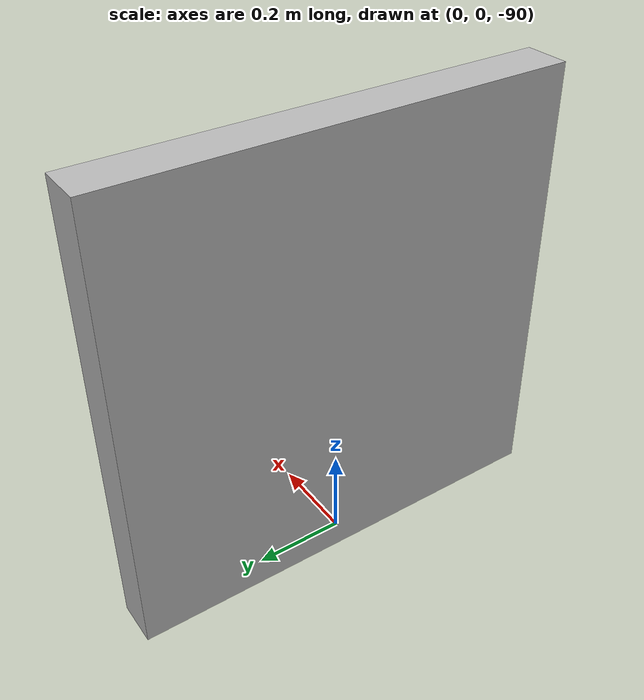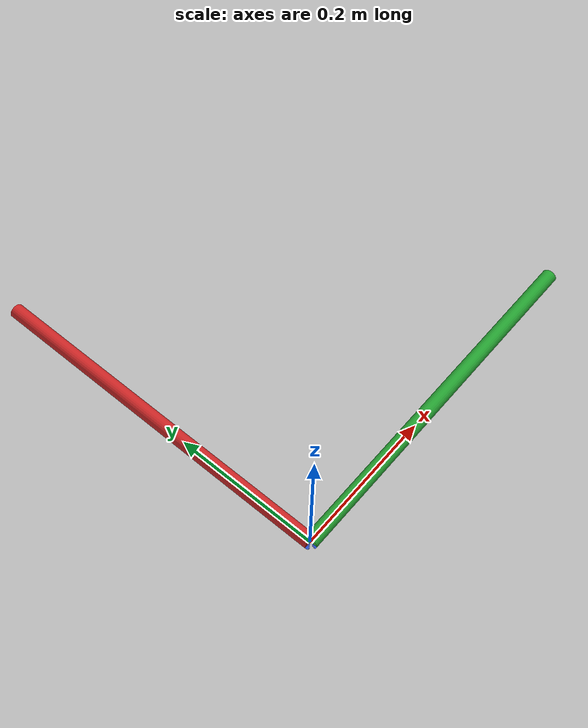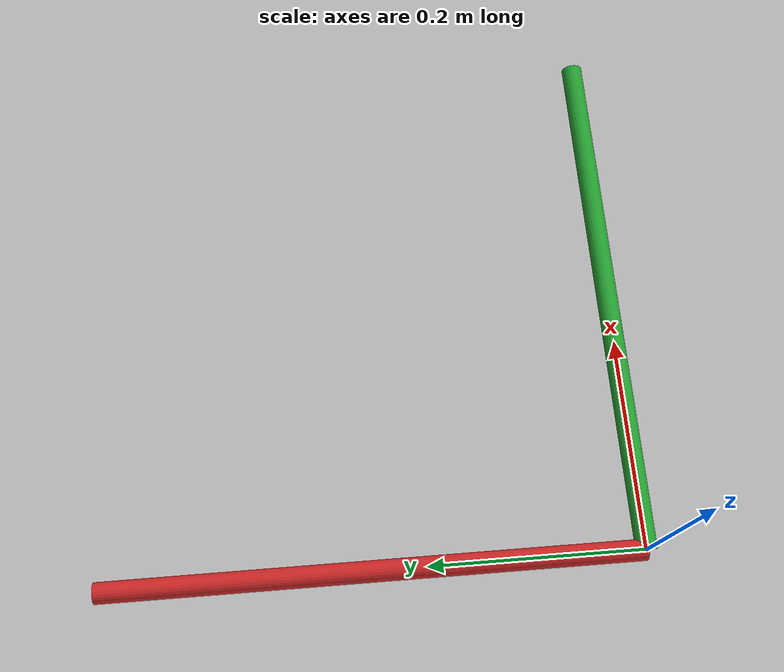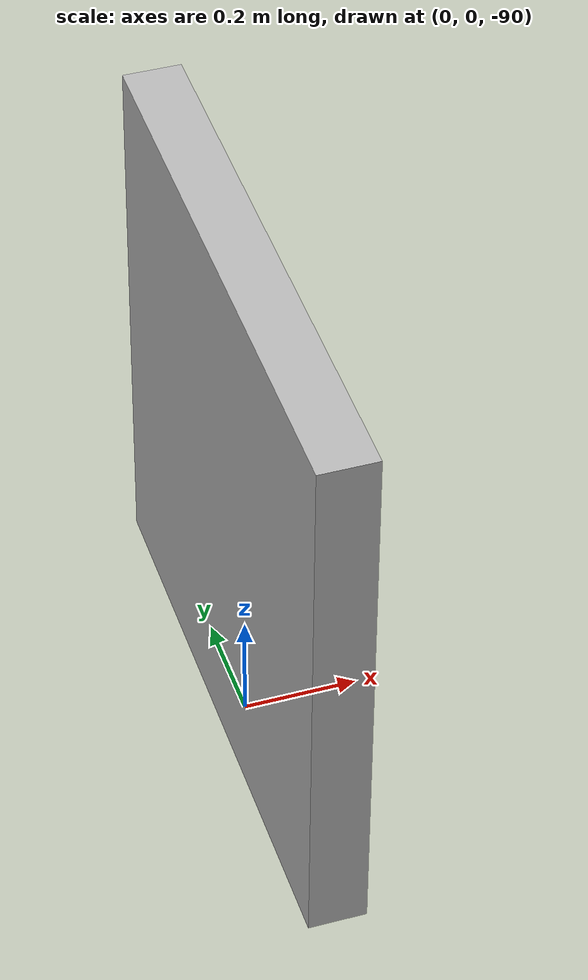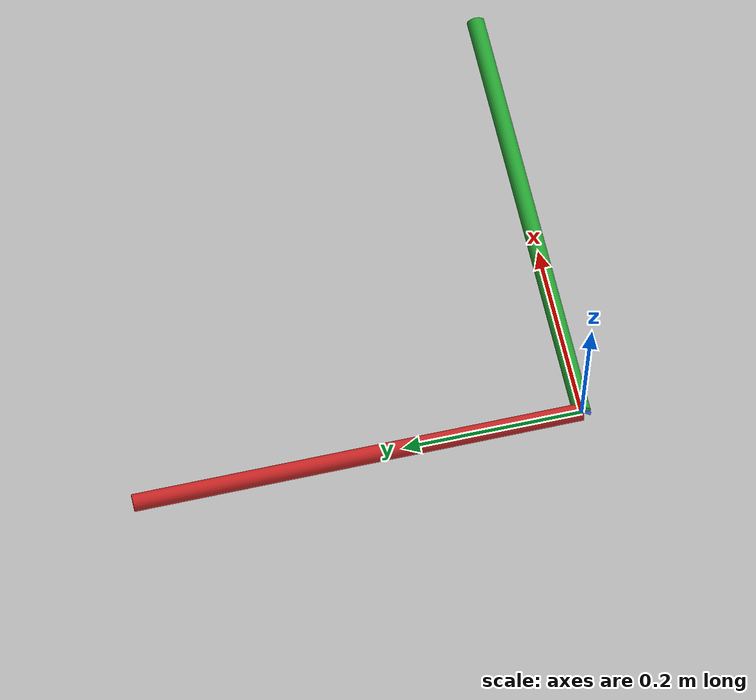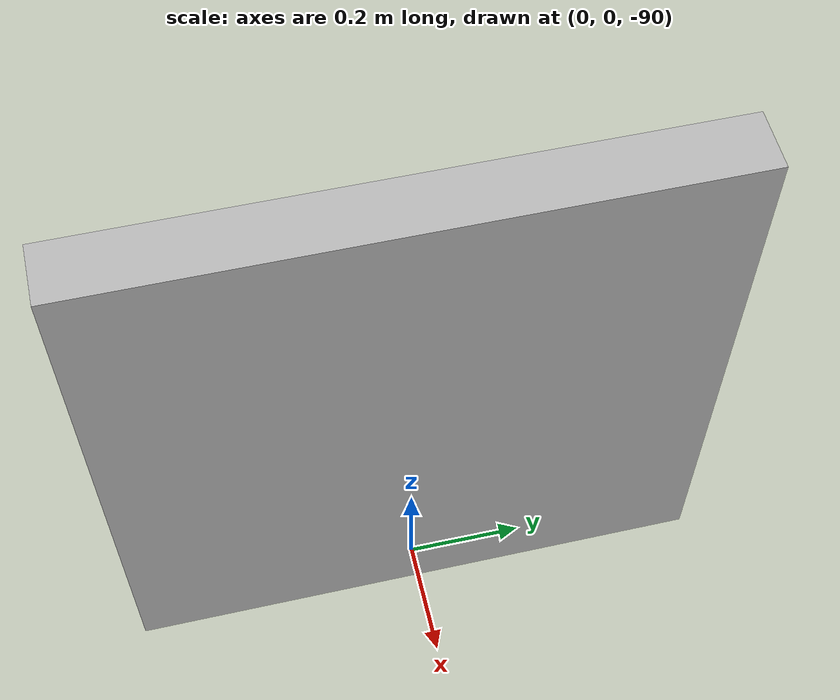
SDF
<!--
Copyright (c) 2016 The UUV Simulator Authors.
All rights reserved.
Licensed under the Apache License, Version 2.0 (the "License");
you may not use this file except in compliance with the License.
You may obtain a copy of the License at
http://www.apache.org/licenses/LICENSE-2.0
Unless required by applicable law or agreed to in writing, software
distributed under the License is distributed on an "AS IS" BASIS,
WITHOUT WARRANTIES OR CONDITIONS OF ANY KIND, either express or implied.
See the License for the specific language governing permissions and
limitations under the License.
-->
<?xml version="1.0" ?>
<!-- Modified for different Gazebo GUI camera angle -->

<sdf version="1.4">
  <world name="oceans_waves">
    <physics name="default_physics" default="true" type="ode">
      <max_step_size>0.002</max_step_size>
      <real_time_factor>1</real_time_factor>
      <real_time_update_rate>500</real_time_update_rate>
    </physics>
    <scene>
      <ambient>0.01 0.01 0.01 1.0</ambient>
      <sky>
        <clouds>
          <speed>12</speed>
        </clouds>
      </sky>
      <shadows>1</shadows>
    </scene>

    <!-- Origin placed somewhere in the middle of the North Sea  -->
    <spherical_coordinates>
      <latitude_deg>56.71897669633431</latitude_deg>
      <longitude_deg>3.515625</longitude_deg>
    </spherical_coordinates>

    <!-- Global light source -->
    <light type="directional" name="sun1">
      <pose>50 0 150 0 0 0</pose>
      <diffuse>1 1 1 1</diffuse>
      <specular>.1 .1 .1 1</specular>
      <direction>0.3 0.3 -1</direction>
      <cast_shadows>false</cast_shadows>
    </light>

    <!-- Global light source -->
    <light type="directional" name="sun_diffuse">
      <pose>-50 0 -150 0 0 0</pose>
      <diffuse>0.6 0.6 0.6 1</diffuse>
      <specular>0 0 0 1</specular>
      <direction>-0.3 -0.3 -1</direction>
      <cast_shadows>false</cast_shadows>
    </light>

    <!-- Virtual NED frame -->
    <include>
      <uri>model://ned_frame</uri>
      <pose>0 0 0 0 0 0</pose>
    </include>

    <!-- Bounding box with sea surface -->
    <include>
      <uri>model://ocean</uri>
      <pose>0 0 0 0 0 0</pose>
    </include>

    <plugin name="sc_interface" filename="libuuv_sc_ros_interface_plugin.so"/>

    <model name="springy plate">
      <pose>0.0 0.0 -90 0 0.0 0.0</pose>
      <link name="link_1">
        <pose>0.0 0.0 0.0 0.0 0.0 0.0</pose>
        <inertial>
          <pose>0.0 0.0 0 0.0 0.0 0.0</pose>
          <inertia>
            <ixx>0.01</ixx>
            <ixy>0.0</ixy>
            <ixz>0.0</ixz>
            <iyy>0.01</iyy>
            <iyz>0.0</iyz>
            <izz>0.01</izz>
          </inertia>
          <mass>1.0</mass>
        </inertial>
        <visual name="visual_plate">
          <pose>0.0 0.0 0.5 0.0 0.0 0.0</pose>
          <geometry>
            <box>
              <size>0.1 1 1 </size>
            </box>
          </geometry>
          <material>
            <script>Gazebo/Red</script>
          </material>
          <laser_retro>100.0</laser_retro>
        </visual>
        <collision name="collision_plate">
          <pose>0.0 0.0 0.5 0.0 0.0 0.0</pose>
          <max_contacts>250</max_contacts>
          <geometry>
            <box>
              <size>0.1 1 1 </size>
            </box>
          </geometry>
          <surface>
            <friction>
              <ode>
                <mu>0.5</mu>
                <mu2>0.2</mu2>
                <fdir1>1.0 0 0</fdir1>
                <slip1>0</slip1>
                <slip2>0</slip2>
              </ode>
            </friction>
            <bounce>
              <restitution_coefficient>0</restitution_coefficient>
              <threshold>1000000.0</threshold>
            </bounce>
            <contact>
              <ode>
                <soft_cfm>0</soft_cfm>
                <kp>1e15</kp>
                <kd>1e13</kd>
                <max_vel>100.0</max_vel>
                <min_depth>0.0001</min_depth>
              </ode>
            </contact>
          </surface>
          <laser_retro>100.0</laser_retro>
        </collision>
        <gravity>true</gravity>
        <self_collide>true</self_collide>
        <kinematic>false</kinematic>
      </link>
      <joint name="joint_0" type="prismatic">
        <parent>world</parent>
        <child>link_1</child>
        <pose>0.0 0.0 0.0 0.0 0.0 0.0</pose>
        <axis>
          <limit>
            <lower>0</lower>
            <upper>0</upper>
            <effort>1000</effort>
            <velocity>1000</velocity>
          </limit>
          <xyz>1.0 0.0 0</xyz>
        </axis>
        <physics>
          <ode>
            <cfm>0.0</cfm>
            <bounce>0.0</bounce>
            <max_force>1000000.0</max_force>
            <velocity>0.0</velocity>
            <fudge_factor>0.0</fudge_factor>
            <limit>
              <cfm>0.2</cfm>
              <erp>1.0</erp>
            </limit>
          </ode>
        </physics>
      </joint>
      <static>false</static>
    </model>

    <gui fullscreen='0'>
      <camera name='user_camera'>
        <pose frame=''>9.0 -3.0 -87.0 0.0 0.7 2.2</pose>
        <view_controller>orbit</view_controller>
        <projection_type>perspective</projection_type>
      </camera>
    </gui>
  </world>
</sdf>

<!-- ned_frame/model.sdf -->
<sdf version='1.5'>
    <model name="world_ned">

      <pose>0 0 0 0 0 0</pose>
      <static>true</static>

      <link name="world_ned">
        <gravity>0</gravity>
        <pose>0 0 0 3.14159265359 0 1.5707963267948966</pose>

        <visual name="N_visual">
          <pose>0.25 0 0 1.5707963267948966 0 1.5707963267948966</pose>
          <geometry>
            <cylinder>
              <radius>0.01</radius>
              <length>0.5</length>
            </cylinder>
          </geometry>
          <material>
            <script>
              <uri>file://media/materials/scripts/gazebo.material</uri>
              <name>Gazebo/Red</name>
            </script>
          </material>
        </visual>

        <visual name="E_visual">
          <pose>0 0.25 0 1.5707963267948966 0 0</pose>
          <geometry>
            <cylinder>
              <radius>0.01</radius>
              <length>0.5</length>
            </cylinder>
          </geometry>
          <material>
            <script>
              <uri>file://media/materials/scripts/gazebo.material</uri>
              <name>Gazebo/Green</name>
            </script>
          </material>
        </visual>

        <visual name="D_visual">
          <pose>0 0 0.25 0 0 0</pose>
          <geometry>
            <cylinder>
              <radius>0.01</radius>
              <length>0.5</length>
            </cylinder>
          </geometry>
          <material>
            <script>
              <uri>file://media/materials/scripts/gazebo.material</uri>
              <name>Gazebo/Blue</name>
            </script>
          </material>
        </visual>
      </link>
    </model>
</sdf>

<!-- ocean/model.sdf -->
<sdf version="1.6">
    <model name="ocean">
        <static>true</static>
        <link name="link">
            <visual name="visual">
                <geometry>
                    <mesh>
                        <uri>meshes/waterlow_small.dae</uri>
                    </mesh>
                </geometry>
                <plugin filename="gz-sim-shader-param-system" name="gz::sim::systems::ShaderParam">
                    <shader language="glsl">
                        <vertex>materials/programs/GerstnerWaves_vs_330.glsl</vertex>
                        <fragment>materials/programs/GerstnerWaves_fs_330.glsl</fragment>
                    </shader>
                    <shader language="metal">
                        <vertex>materials/programs/GerstnerWaves_vs.metal</vertex>
                        <fragment>materials/programs/GerstnerWaves_fs.metal</fragment>
                    </shader>
                    <param>
                        <shader>vertex</shader>
                        <name>Nwaves</name>
                        <type>int</type>
                        <value>0</value>
                    </param>
                    <param>
                        <shader>vertex</shader>
                        <name>rescale</name>
                        <type>float</type>
                        <value>0.125</value>
                    </param>
                    <param>
                        <shader>vertex</shader>
                        <name>bumpScale</name>
                        <type>float_array</type>
                        <value>75 75</value>
                    </param>
                    <param>
                        <shader>vertex</shader>
                        <name>bumpSpeed</name>
                        <type>float_array</type>
                        <value>0.01 0.0</value>
                    </param>
                    <param>
                        <shader>vertex</shader>
                        <name>amplitude</name>
                        <type>float_array</type>
                        <value>0.42 0.28, 0.21</value>
                    </param>
                    <param>
                        <shader>vertex</shader>
                        <name>wavenumber</name>
                        <type>float_array</type>
                        <value>0.028 0.0896 0.0504</value>
                    </param>
                    <param>
                        <shader>vertex</shader>
                        <name>omega</name>
                        <type>float_array</type>
                        <value>0.5 1.7 1.0</value>
                    </param>
                    <param>
                        <shader>vertex</shader>
                        <name>dir0</name>
                        <type>float_array</type>
                        <value>-1.0 0.0</value>
                    </param>
                    <param>
                        <shader>vertex</shader>
                        <name>dir1</name>
                        <type>float_array</type>
                        <value>-0.7 0.7</value>
                    </param>
                    <param>
                        <shader>vertex</shader>
                        <name>dir2</name>
                        <type>float_array</type>
                        <value>0.7 0.7</value>
                    </param>
                    <param>
                        <shader>vertex</shader>
                        <name>steepness</name>
                        <type>float_array</type>
                        <value>1.0 1.5 0.8</value>
                    </param>
                    <param>
                        <shader>vertex</shader>
                        <name>tau</name>
                        <type>float</type>
                        <value>2.0</value>
                    </param>
                    <param>
                        <shader>vertex</shader>
                        <name>camera_position_object_space</name>
                    </param>
                    <param>
                        <shader>vertex</shader>
                        <name>worldviewproj_matrix</name>
                    </param>
                    <param>
                        <shader>vertex</shader>
                        <name>t</name>
                        <value>TIME</value>
                    </param>
                    <param>
                        <shader>fragment</shader>
                        <name>hdrMultiplier</name>
                        <type>float</type>
                        <value>0.4</value>
                    </param>
                    <param>
                        <shader>fragment</shader>
                        <name>fresnelPower</name>
                        <type>float</type>
                        <value>5.0</value>
                    </param>
                    <param>
                        <shader>fragment</shader>
                        <name>shallowColor</name>
                        <type>float_array</type>
                        <value>0.0 0.1 0.2 1.0</value>
                    </param>
                    <param>
                        <shader>fragment</shader>
                        <name>deepColor</name>
                        <type>float_array</type>
                        <value>0.0 0.05 0.02 1.0</value>
                    </param>
                    <param>
                        <shader>fragment</shader>
                        <name>cubeMap</name>
                        <type>texture_cube</type>
                        <value>materials/textures/skybox_lowres.dds</value>
                        <!-- arg: texture coord set index -->
                        <arg>1</arg>
                    </param>
                    <param>
                        <shader>fragment</shader>
                        <name>bumpMap</name>
                        <type>texture</type>
                        <value>materials/textures/wave_normals.dds</value>
                    </param>
                </plugin>
            </visual>
        </link>
    </model>
</sdf>
